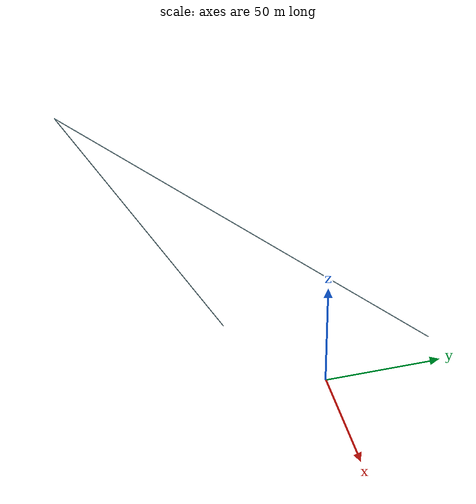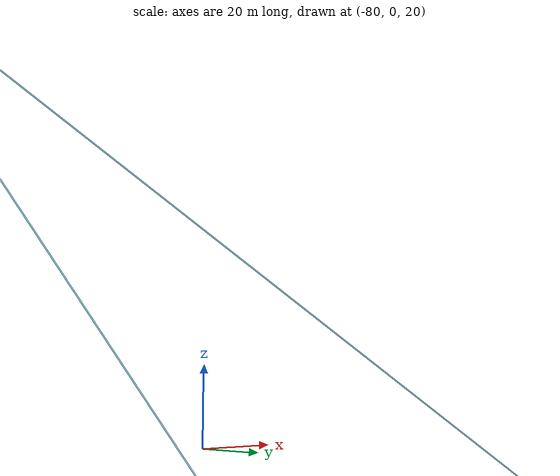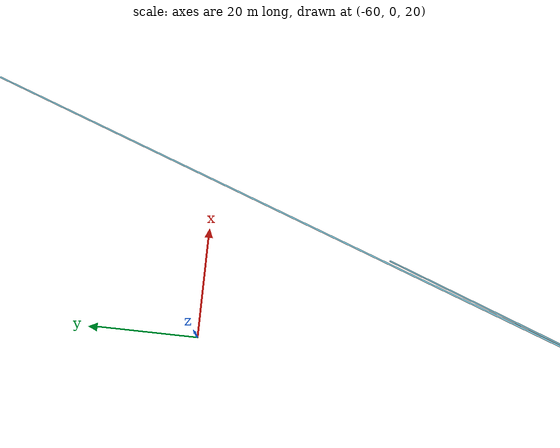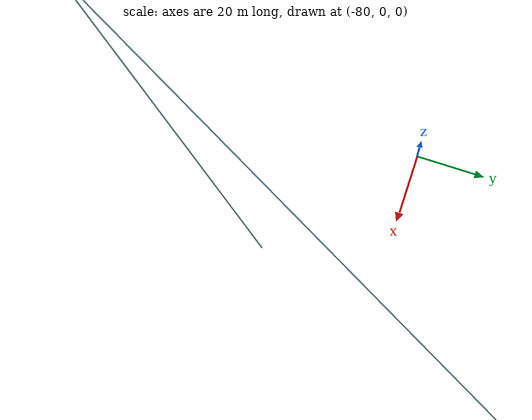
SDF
<?xml version="1.0" ?>
<sdf version="1.9">
  <model name="beam_A"><static>true</static><link name="l"><visual name="leg0"><pose>-43.200 -23.100 51.614 0 1.0191 -1.9872</pose><geometry><cylinder><radius>0.12</radius><length>184.630</length></cylinder></geometry><material><ambient>0.3 0.85 1 1</ambient><diffuse>0.3 0.85 1 1</diffuse><specular>0.1 0.1 0.1 1</specular><emissive>0.3 0.85 1 1</emissive></material><transparency>0.35</transparency><cast_shadows>false</cast_shadows></visual><visual name="leg1"><pose>-57.750 -64.500 51.614 0 2.5148 1.0561</pose><geometry><cylinder><radius>0.12</radius><length>119.483</length></cylinder></geometry><material><ambient>0.3 0.85 1 1</ambient><diffuse>0.3 0.85 1 1</diffuse><specular>0.1 0.1 0.1 1</specular><emissive>0.3 0.85 1 1</emissive></material><transparency>0.35</transparency><cast_shadows>false</cast_shadows></visual></link></model>
</sdf>
